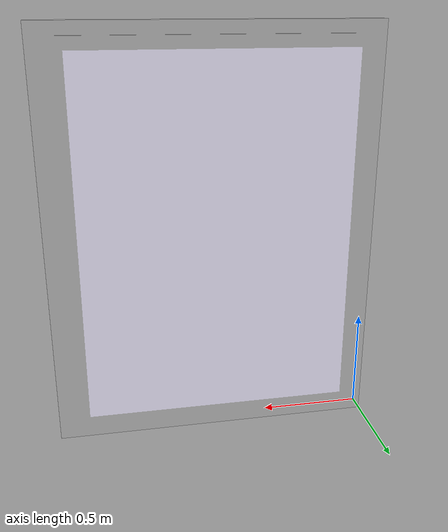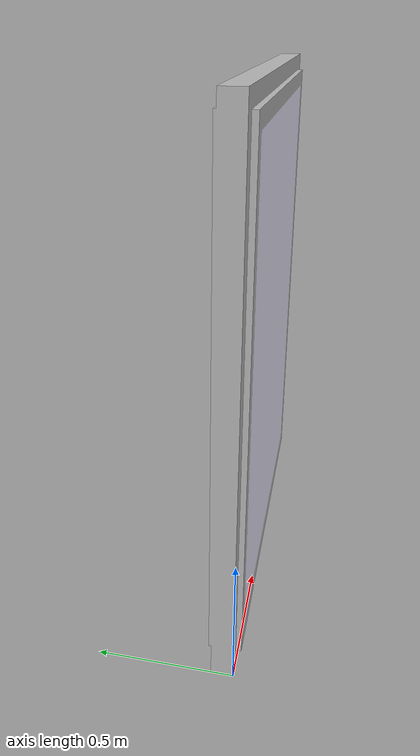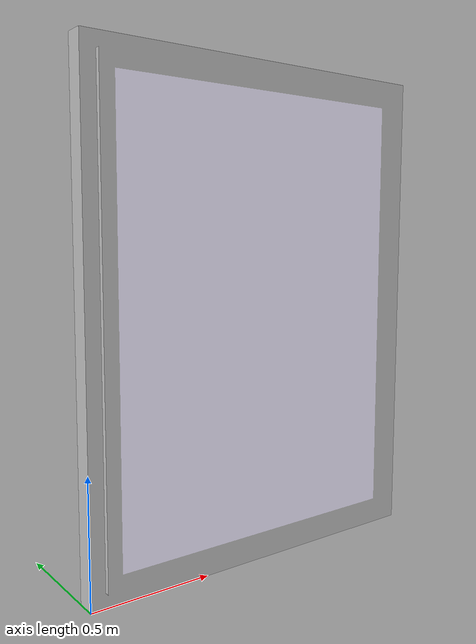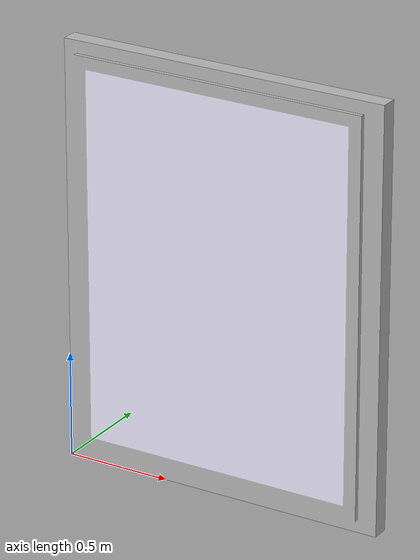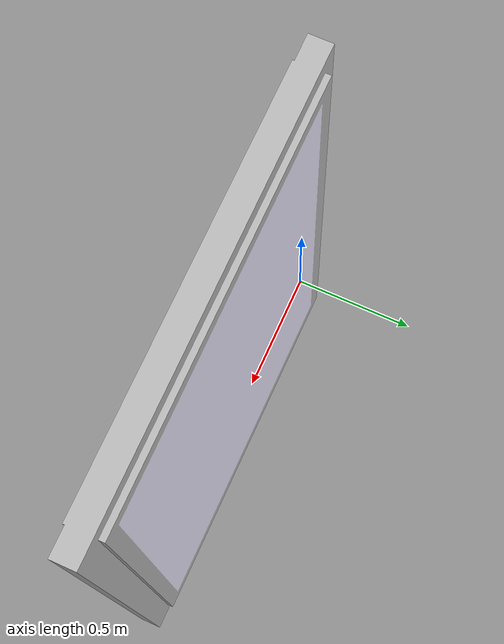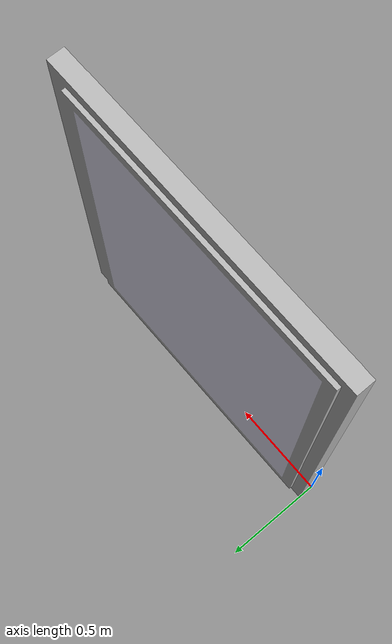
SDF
<?xml version="1.0"?>

<sdf version="1.6">
  <model name='windows_1'>
    <static>true</static>
    <link name="body">

        <visual name="visual">
          <geometry>
            <mesh><uri>model://models/windows_1/meshes/windows_1.dae</uri></mesh>
          </geometry>
        </visual>

        <collision name="collision">
          <geometry>
            <mesh><uri>model://models/windows_1/meshes/windows_1.dae</uri></mesh>
          </geometry>
        </collision>

    </link>
  </model>
</sdf>
